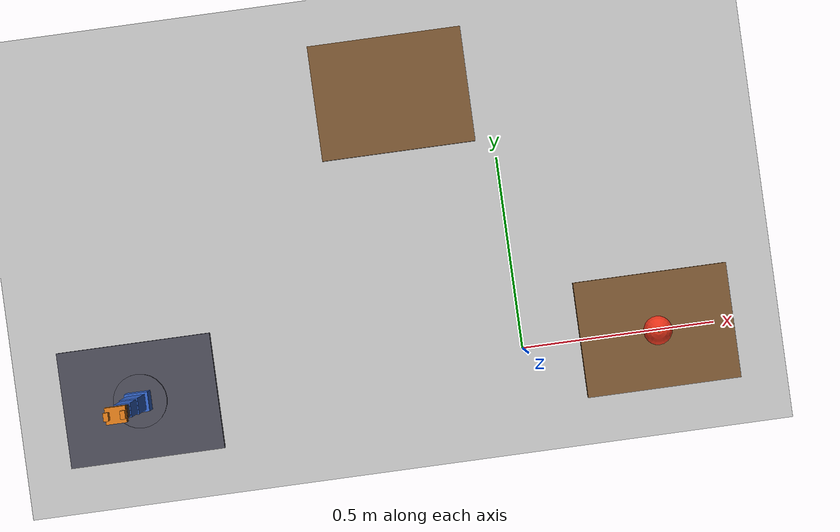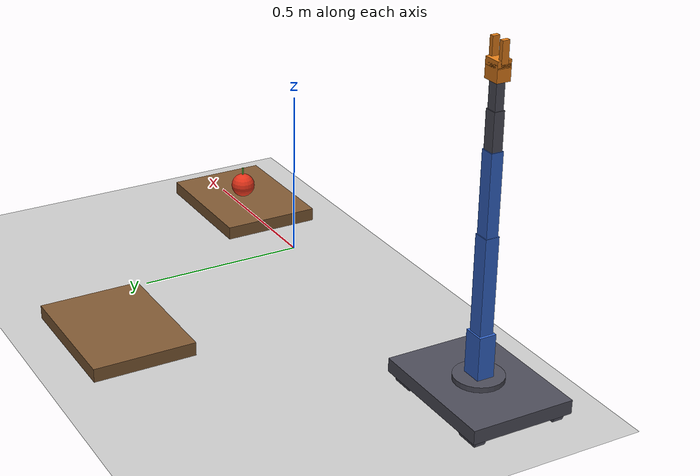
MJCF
<mujoco model="robot_arm_pick_apple">
  <compiler angle="radian" meshdir="." autolimits="true"/>
  <option timestep="0.002" gravity="0 0 -9.81" iterations="50" solver="Newton">
    <flag warmstart="enable"/>
  </option>

  <asset>
    <texture type="skybox" builtin="gradient" rgb1="0.6 0.8 1.0" rgb2="0.2 0.4 0.8" width="512" height="512"/>
    <texture name="grid" type="2d" builtin="checker" rgb1="0.9 0.9 0.9" rgb2="0.7 0.7 0.7" width="512" height="512"/>
    <material name="grid_mat" texture="grid" texrepeat="10 10" reflectance="0.1"/>
    <material name="robot_blue" rgba="0.2 0.4 0.8 1.0"/>
    <material name="robot_grey" rgba="0.3 0.3 0.35 1.0"/>
    <material name="robot_orange" rgba="0.9 0.5 0.1 1.0"/>
    <material name="apple_red" rgba="0.9 0.2 0.1 1.0"/>
    <material name="apple_green" rgba="0.3 0.7 0.2 1.0"/>
    <material name="wood" rgba="0.5 0.35 0.2 1.0"/>
  </asset>

  <worldbody>
    <!-- Ground -->
    <light name="sun" pos="1 1 3" dir="-1 -1 -3" diffuse="0.8 0.8 0.8"/>
    <light name="fill" pos="-1 0.5 2" dir="1 -0.5 -2" diffuse="0.4 0.4 0.4"/>
    <geom name="floor" type="plane" size="2 2 0.1" material="grid_mat"/>

    <!-- Table -->
    <body name="table" pos="0.35 0 0.02">
      <geom name="table_top" type="box" size="0.20 0.15 0.02" material="wood" friction="0.8"/>
    </body>

    <!-- Target Table (where apple will be placed) -->
    <body name="target_table" pos="-0.25 0.70 0.02">
      <geom name="target_table_top" type="box" size="0.20 0.15 0.02" material="wood" friction="0.8"/>
    </body>

    <!-- Apple (kinematic, will be moved by controller when grasped) -->
    <body name="apple" pos="0.35 0 0.0775">
      <geom name="apple_geom" type="sphere" size="0.0375" material="apple_red"/>
      <geom name="apple_stem" type="cylinder" size="0.003 0.015" pos="0 0 0.045" material="apple_green"/>
    </body>

    <!-- ===== Mobile Base (4-wheel vehicle) ===== -->
    <body name="mobile_base" pos="-1.0 0 0.04">
      <!-- Chassis -->
      <geom name="chassis" type="box" size="0.20 0.15 0.02" pos="0 0 0" material="robot_grey"/>

      <!-- Front-left wheel -->
      <body name="wheel_fl" pos="-0.15 0.12 -0.02">
        <joint name="wheel_fl_joint" type="hinge" axis="0 1 0" range="-1e6 1e6" damping="0.1"/>
        <geom name="wheel_fl_geom" type="cylinder" size="0.04 0.015" euler="1.5708 0 0" material="robot_grey"/>
      </body>

      <!-- Front-right wheel -->
      <body name="wheel_fr" pos="-0.15 -0.12 -0.02">
        <joint name="wheel_fr_joint" type="hinge" axis="0 1 0" range="-1e6 1e6" damping="0.1"/>
        <geom name="wheel_fr_geom" type="cylinder" size="0.04 0.015" euler="1.5708 0 0" material="robot_grey"/>
      </body>

      <!-- Rear-left wheel -->
      <body name="wheel_rl" pos="0.15 0.12 -0.02">
        <joint name="wheel_rl_joint" type="hinge" axis="0 1 0" range="-1e6 1e6" damping="0.1"/>
        <geom name="wheel_rl_geom" type="cylinder" size="0.04 0.015" euler="1.5708 0 0" material="robot_grey"/>
      </body>

      <!-- Rear-right wheel -->
      <body name="wheel_rr" pos="0.15 -0.12 -0.02">
        <joint name="wheel_rr_joint" type="hinge" axis="0 1 0" range="-1e6 1e6" damping="0.1"/>
        <geom name="wheel_rr_geom" type="cylinder" size="0.04 0.015" euler="1.5708 0 0" material="robot_grey"/>
      </body>

      <!-- ===== Robot Base (mounted on mobile base) ===== -->
      <body name="base_link" pos="0 0 0.0">
        <geom name="base_geom" type="cylinder" size="0.070 0.0175" pos="0 0 0.0175" material="robot_grey"/>

        <!-- Joint 1 -->
        <body name="link1" pos="0 0 0.035">
          <joint name="joint1" type="hinge" axis="0 0 1" range="-3.14 3.14" damping="5.0"/>
          <geom name="link1_geom" type="box" size="0.030 0.025 0.0625" pos="0 0 0.0625" material="robot_blue"/>

          <!-- Joint 2 -->
          <body name="link2" pos="0 0 0.125">
            <joint name="joint2" type="hinge" axis="0 1 0" range="-1.57 1.57" damping="5.0"/>
            <geom name="link2_geom" type="box" size="0.0225 0.020 0.1375" pos="0 0 0.1375" material="robot_blue"/>

            <!-- Joint 3 -->
            <body name="link3" pos="0 0 0.275">
              <joint name="joint3" type="hinge" axis="0 1 0" range="-2.0 2.0" damping="4.0"/>
              <geom name="link3_geom" type="box" size="0.020 0.0175 0.114" pos="0 0 0.114" material="robot_blue"/>

              <!-- Joint 4 -->
              <body name="link4" pos="0 0 0.228">
                <joint name="joint4" type="hinge" axis="0 0 1" range="-3.14 3.14" damping="2.0"/>
                <geom name="link4_geom" type="box" size="0.0175 0.015 0.0525" pos="0 0 0.0525" material="robot_grey"/>

                <!-- Joint 5 -->
                <body name="link5" pos="0 0 0.105">
                  <joint name="joint5" type="hinge" axis="0 1 0" range="-1.57 1.57" damping="2.0"/>
                  <geom name="link5_geom" type="box" size="0.015 0.0125 0.0375" pos="0 0 0.0375" material="robot_grey"/>

                <!-- Joint 6 -->
                <body name="link6" pos="0 0 0.075">
                  <joint name="joint6" type="hinge" axis="0 0 1" range="-3.14 3.14" damping="1.0"/>
                  <geom name="link6_geom" type="box" size="0.025 0.020 0.0225" pos="0 0 0.0225" material="robot_orange"/>

                  <!-- Gripper base -->
                  <body name="gripper" pos="0 0 0.045">
                    <geom name="gripper_base" type="box" size="0.025 0.020 0.010" material="robot_orange"/>
                    <!-- Stereo cameras on gripper: binocular vision system -->
                    <camera name="left_camera" mode="targetbody" target="apple" pos="-0.03 0 0.06" fovy="70"/>
                    <camera name="right_camera" mode="targetbody" target="apple" pos="0.03 0 0.06" fovy="70"/>

                    <!-- Left finger -->
                    <body name="left_finger" pos="-0.020 0 0.030">
                      <joint name="left_gripper_joint" type="slide" axis="1 0 0" range="0 0.040" damping="0.5"/>
                      <geom name="left_finger_geom" type="box" size="0.006 0.010 0.030" material="robot_orange"/>
                    </body>

                    <!-- Right finger -->
                    <body name="right_finger" pos="0.020 0 0.030">
                      <joint name="right_gripper_joint" type="slide" axis="-1 0 0" range="0 0.040" damping="0.5"/>
                      <geom name="right_finger_geom" type="box" size="0.006 0.010 0.030" material="robot_orange"/>
                    </body>
                  </body>
                </body>
              </body>
            </body>
          </body>
        </body>
      </body>
    </body>
  </body>
  </worldbody>

  <!-- No actuators: arm is kinematically controlled -->
</mujoco>
